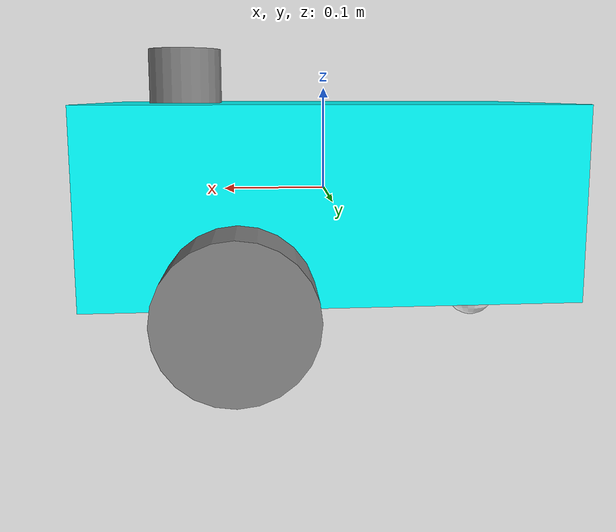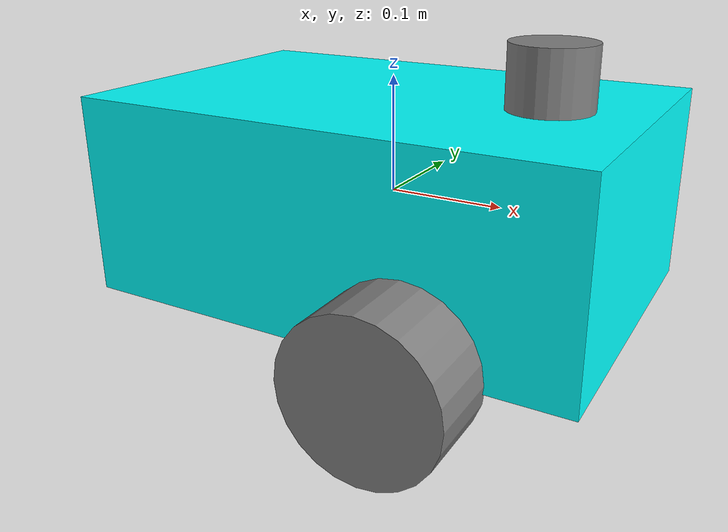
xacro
<?xml version="1.0"?>
<robot xmlns:xacro="http://www.ros.org/wiki/xacro" name="pibot">
    <xacro:arg name="sim_mode" default="false"/>
    <xacro:include filename="robot_description.xacro"/>
    <xacro:if value="$(arg sim_mode)">
        <xacro:include filename="ros2_control.xacro"/>
    </xacro:if>
</robot>

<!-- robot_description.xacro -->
<robot name="pibot" xmlns:xacro="http://ros.org/wiki/xacro">
<!-- Define robot constants -->
  <xacro:property name="base_width" value="0.2794"/>
  <xacro:property name="base_length" value="0.4318"/>
  <xacro:property name="base_height" value="0.17145"/>
  <xacro:property name="wheel_radius" value="0.06604"/>
  <xacro:property name="wheel_width" value="0.066675"/>
  <xacro:property name="wheel_ygap" value="0.03"/>
  <xacro:property name="wheel_zoff" value="0.07915"/>
  <xacro:property name="wheel_xoff" value="-0.08255"/>
  <xacro:property name="caster_xoff" value="-0.1555"/>

   <!-- Robot Base -->
  <link name="base_link">
    <visual>
      <geometry>
        <box size="${base_length} ${base_width} ${base_height}"/>
      </geometry>
      <material name="Cyan">
        <color rgba="0.0 1.0 1.0 1.0"/>
      </material>
    </visual>
  </link>

  <!-- Robot Footprint -->
  <!-- z origin ${-(wheel_radius+wheel_zoff+base_height)} -->
  <link name="base_footprint">
  </link>

  <joint name="base_joint" type="fixed">
    <parent link="base_link"/>
    <child link="base_footprint"/>
    <origin xyz="0.0 0.0 -${(base_height/2-wheel_radius+wheel_zoff)}" rpy="0 0 0"/>
  </joint>

  <xacro:macro name="box_inertia" params="m w h d">
    <inertial>
      <origin xyz="0 0 ${-(base_height/2)}" rpy="0 0 0"/>
      <mass value="${m}"/>
      <inertia ixx="${(m/12) * (h*h + d*d)}" ixy="0.0" ixz="0.0" iyy="${(m/12) * (w*w + d*d)}" iyz="0.0" izz="${(m/12) * (w*w + h*h)}"/>
    </inertial>
  </xacro:macro>

  <link name="chassis">
  <collision>
      <origin xyz="0 0 0" rpy="0 0 0"/>
      <geometry>
        <box size="${base_length} ${base_width} ${base_height}"/>
      </geometry>
    </collision>
    <xacro:box_inertia m="6" w="${base_width}" d="${base_length}" h="${base_height}"/>
  </link>

  <joint name="chassis_joint" type="fixed">
    <parent link="base_link"/>
    <child link="chassis"/>
    <origin xyz="0 0 0" rpy="0 0 0"/>
  </joint>

    <!-- Wheels -->
  <xacro:macro name="wheel" params="prefix x_reflect y_reflect">
    <link name="${prefix}_link">
      <visual>
        <origin xyz="0 0 0" rpy="${pi/2} 0 0"/>
        <geometry>
            <cylinder radius="${wheel_radius}" length="${wheel_width}"/>
        </geometry>
        <material name="Gray">
          <color rgba="0.5 0.5 0.5 1.0"/>
        </material>
      </visual>
      <collision>
        <origin xyz="0 0 0" rpy="${pi/2} 0 0"/>
        <geometry>
            <cylinder radius="${wheel_radius}" length="${wheel_width}"/>
        </geometry>
      </collision>
      <inertial>
      <mass value="0.5"/>
      <inertia ixx="${(1/12) * 0.1 * (3 * wheel_radius + wheel_width*wheel_width)}"
               ixy="0.0"
               ixz="0.0"
               iyy="${(1/12) * 0.1 * (3 * wheel_radius + wheel_width*wheel_width)}"
               iyz="0.0"
               izz="${(1/12) * 0.1 * (3 * wheel_radius + wheel_width*wheel_width)}"/>
      </inertial>
    </link>
<!-- change type to fixed for rviz -->
    <joint name="${prefix}_joint" type="fixed">
      <parent link="base_link"/>
      <child link="${prefix}_link"/>
      <origin xyz="${-wheel_xoff} ${y_reflect*(base_width/2+wheel_ygap)} ${-wheel_zoff}" rpy="0 0 0"/>
      <axis xyz="0 1 0"/>
    </joint>
  </xacro:macro>

  <xacro:wheel prefix="drivewhl_l" x_reflect="-1" y_reflect="1" />
  <xacro:wheel prefix="drivewhl_r" x_reflect="-1" y_reflect="-1" />

    <!-- Caster Wheel -->
  <link name="rear_caster">
    <visual>
      <geometry>
        <sphere radius="0.0254"/>
      </geometry>
      <material name="White">
        <color rgba="1.0 1.0 1.0 1.0"/>
      </material>
    </visual>
    <collision>
      <origin xyz="0 0 0" rpy="0 0 0"/>
      <geometry>
        <sphere radius="0.020"/>
      </geometry>
    </collision>
    <inertial>
      <mass value="1.0"/>
      <inertia
        ixx="${(2/5 * 0.01 * (0.02 * 0.02))}"
        ixy="0.0"
        ixz="0.0"
        iyy="${(2/5 * 0.01 * (0.02 * 0.02))}"
        iyz="0.0"
        izz="${(2/5 * 0.01 * (0.02 * 0.02))}"
      />
    </inertial>
  </link>

  <joint name="caster_joint" type="fixed">
    <parent link="base_link"/>
    <child link="rear_caster"/>
    <origin xyz="${caster_xoff} 0.0 ${-(base_height/2 + 0.025)}" rpy="0 0 0"/>
  </joint>

  <!-- Lidar Link -->
  <link name="lidar_link">
  <visual>
    <geometry>
    <cylinder radius="0.035" length="0.055" />
    </geometry>
    <material name="Gray">
          <color rgba="0.5 0.5 0.5 1.0"/>
        </material>
  </visual>
  </link>

  <joint name="lidar_joint" type="fixed">
    <parent link="base_link"/>
    <child link="lidar_link"/>
    <origin xyz="0.1365 0 0.11" rpy="0 0 0"/>
  </joint>

  <!-- Lidar Link -->
  <link name="laser">
  </link>

  <joint name="laser_joint" type="fixed">
    <parent link="lidar_link"/>
    <child link="laser"/>
    <origin xyz="0 0 0" rpy="0 0 3.14159"/>
  </joint>

  <link name="imu_link">
  </link>
  <joint name="imu_joint" type="fixed">
    <parent link="base_link"/>
    <child link="imu_link"/>
    <origin xyz="-0.05 0 0"/>
  </joint>

  <joint name="camera_joint" type="fixed">
    <parent link="base_link"/>
    <child link="camera_link"/>
    <origin xyz="0.1 0 0" rpy="0 0 0"/>
  </joint>
  <link name="camera_link">
    <visual>
      <geometry>
        <box size="0.01 0.01 0.01"/>
      </geometry>
    </visual>
  </link>

  <joint name="camera_optical_joint" type="fixed">
    <parent link="camera_link"/>
    <child link="camera_link_optical"/>
    <origin xyz="0 0 0" rpy="${-pi/2} 0 ${-pi/2}"/>
  </joint>
  <link name="camera_link_optical">
  </link>

</robot>
